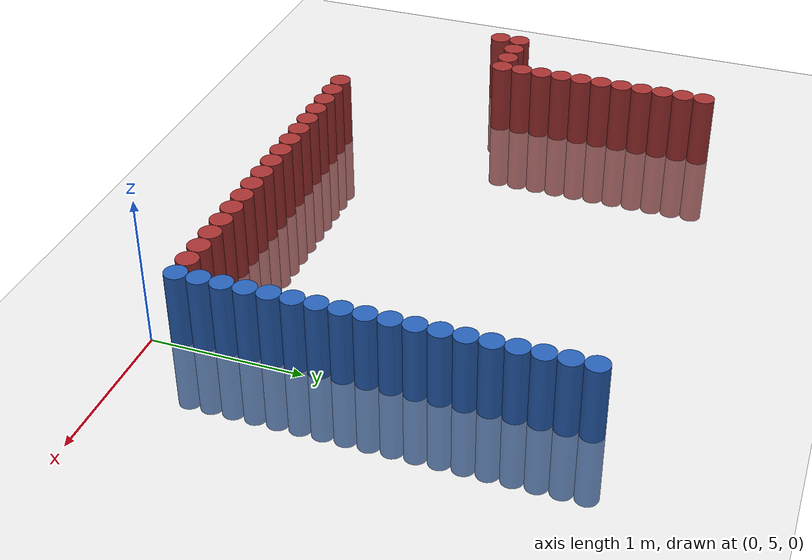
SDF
<sdf version="1.6">
 <world name="default">
  <model name="ground_plane">
   <static>1</static>
   <link name="link">
    <collision name="collision">
     <geometry><plane><normal>0 0 1</normal><size>100 100</size></plane></geometry>
     <surface><friction><ode><mu>100</mu><mu2>50</mu2></ode></friction></surface>
    </collision>
    <visual name="visual">
     <cast_shadows>0</cast_shadows>
     <geometry><plane><normal>0 0 1</normal><size>100 100</size></plane></geometry>
     <material>
      <script><uri>file://media/materials/scripts/gazebo.material</uri><name>Gazebo/Grey</name></script>
     </material>
    </visual>
   </link>
  </model>
  <model name="unit_cylinder_242">
   <static>1</static>
   <pose>-3.675000 6.075000 0.000000 0.000000 0.000000 0.000000</pose>
   <link name="link">
    <inertial>
     <mass>1</mass>
     <inertia><ixx>0.145833</ixx><ixy>0</ixy><ixz>0</ixz><iyy>0.145833</iyy><iyz>0</iyz><izz>0.125</izz></inertia>
    </inertial>
    <collision name="collision">
     <geometry><cylinder><radius>0.075000</radius><length>1</length></cylinder></geometry>
    </collision>
    <visual name="visual">
     <geometry><cylinder><radius>0.075000</radius><length>1</length></cylinder></geometry>
     <material>
      <ambient>0.648000 0.192000 0.192000 1</ambient>
      <diffuse>0.648000 0.192000 0.192000 1</diffuse>
     </material>
     <material>
      <script><name>Gazebo/Grey</name><uri>file://media/materials/scripts/gazebo.material</uri></script>
     </material>
    </visual>
   </link>
  </model>
  <model name="unit_cylinder_243">
   <static>1</static>
   <pose>-3.675000 6.225000 0.000000 0.000000 0.000000 0.000000</pose>
   <link name="link">
    <inertial>
     <mass>1</mass>
     <inertia><ixx>0.145833</ixx><ixy>0</ixy><ixz>0</ixz><iyy>0.145833</iyy><iyz>0</iyz><izz>0.125</izz></inertia>
    </inertial>
    <collision name="collision">
     <geometry><cylinder><radius>0.075000</radius><length>1</length></cylinder></geometry>
    </collision>
    <visual name="visual">
     <geometry><cylinder><radius>0.075000</radius><length>1</length></cylinder></geometry>
     <material>
      <ambient>0.648000 0.192000 0.192000 1</ambient>
      <diffuse>0.648000 0.192000 0.192000 1</diffuse>
     </material>
     <material>
      <script><name>Gazebo/Grey</name><uri>file://media/materials/scripts/gazebo.material</uri></script>
     </material>
    </visual>
   </link>
  </model>
  <model name="unit_cylinder_249">
   <static>1</static>
   <pose>-3.525000 6.225000 0.000000 0.000000 0.000000 0.000000</pose>
   <link name="link">
    <inertial>
     <mass>1</mass>
     <inertia><ixx>0.145833</ixx><ixy>0</ixy><ixz>0</ixz><iyy>0.145833</iyy><iyz>0</iyz><izz>0.125</izz></inertia>
    </inertial>
    <collision name="collision">
     <geometry><cylinder><radius>0.075000</radius><length>1</length></cylinder></geometry>
    </collision>
    <visual name="visual">
     <geometry><cylinder><radius>0.075000</radius><length>1</length></cylinder></geometry>
     <material>
      <ambient>0.648000 0.192000 0.192000 1</ambient>
      <diffuse>0.648000 0.192000 0.192000 1</diffuse>
     </material>
     <material>
      <script><name>Gazebo/Grey</name><uri>file://media/materials/scripts/gazebo.material</uri></script>
     </material>
    </visual>
   </link>
  </model>
  <model name="unit_cylinder_253">
   <static>1</static>
   <pose>-3.375000 6.225000 0.000000 0.000000 0.000000 0.000000</pose>
   <link name="link">
    <inertial>
     <mass>1</mass>
     <inertia><ixx>0.145833</ixx><ixy>0</ixy><ixz>0</ixz><iyy>0.145833</iyy><iyz>0</iyz><izz>0.125</izz></inertia>
    </inertial>
    <collision name="collision">
     <geometry><cylinder><radius>0.075000</radius><length>1</length></cylinder></geometry>
    </collision>
    <visual name="visual">
     <geometry><cylinder><radius>0.075000</radius><length>1</length></cylinder></geometry>
     <material>
      <ambient>0.648000 0.192000 0.192000 1</ambient>
      <diffuse>0.648000 0.192000 0.192000 1</diffuse>
     </material>
     <material>
      <script><name>Gazebo/Grey</name><uri>file://media/materials/scripts/gazebo.material</uri></script>
     </material>
    </visual>
   </link>
  </model>
  <model name="unit_cylinder_257">
   <static>1</static>
   <pose>-3.225000 6.225000 0.000000 0.000000 0.000000 0.000000</pose>
   <link name="link">
    <inertial>
     <mass>1</mass>
     <inertia><ixx>0.145833</ixx><ixy>0</ixy><ixz>0</ixz><iyy>0.145833</iyy><iyz>0</iyz><izz>0.125</izz></inertia>
    </inertial>
    <collision name="collision">
     <geometry><cylinder><radius>0.075000</radius><length>1</length></cylinder></geometry>
    </collision>
    <visual name="visual">
     <geometry><cylinder><radius>0.075000</radius><length>1</length></cylinder></geometry>
     <material>
      <ambient>0.648000 0.192000 0.192000 1</ambient>
      <diffuse>0.648000 0.192000 0.192000 1</diffuse>
     </material>
     <material>
      <script><name>Gazebo/Grey</name><uri>file://media/materials/scripts/gazebo.material</uri></script>
     </material>
    </visual>
   </link>
  </model>
  <model name="unit_cylinder_258">
   <static>1</static>
   <pose>-3.225000 6.375000 0.000000 0.000000 0.000000 0.000000</pose>
   <link name="link">
    <inertial>
     <mass>1</mass>
     <inertia><ixx>0.145833</ixx><ixy>0</ixy><ixz>0</ixz><iyy>0.145833</iyy><iyz>0</iyz><izz>0.125</izz></inertia>
    </inertial>
    <collision name="collision">
     <geometry><cylinder><radius>0.075000</radius><length>1</length></cylinder></geometry>
    </collision>
    <visual name="visual">
     <geometry><cylinder><radius>0.075000</radius><length>1</length></cylinder></geometry>
     <material>
      <ambient>0.648000 0.192000 0.192000 1</ambient>
      <diffuse>0.648000 0.192000 0.192000 1</diffuse>
     </material>
     <material>
      <script><name>Gazebo/Grey</name><uri>file://media/materials/scripts/gazebo.material</uri></script>
     </material>
    </visual>
   </link>
  </model>
  <model name="unit_cylinder_259">
   <static>1</static>
   <pose>-3.225000 6.525000 0.000000 0.000000 0.000000 0.000000</pose>
   <link name="link">
    <inertial>
     <mass>1</mass>
     <inertia><ixx>0.145833</ixx><ixy>0</ixy><ixz>0</ixz><iyy>0.145833</iyy><iyz>0</iyz><izz>0.125</izz></inertia>
    </inertial>
    <collision name="collision">
     <geometry><cylinder><radius>0.075000</radius><length>1</length></cylinder></geometry>
    </collision>
    <visual name="visual">
     <geometry><cylinder><radius>0.075000</radius><length>1</length></cylinder></geometry>
     <material>
      <ambient>0.648000 0.192000 0.192000 1</ambient>
      <diffuse>0.648000 0.192000 0.192000 1</diffuse>
     </material>
     <material>
      <script><name>Gazebo/Grey</name><uri>file://media/materials/scripts/gazebo.material</uri></script>
     </material>
    </visual>
   </link>
  </model>
  <model name="unit_cylinder_260">
   <static>1</static>
   <pose>-3.225000 6.675000 0.000000 0.000000 0.000000 0.000000</pose>
   <link name="link">
    <inertial>
     <mass>1</mass>
     <inertia><ixx>0.145833</ixx><ixy>0</ixy><ixz>0</ixz><iyy>0.145833</iyy><iyz>0</iyz><izz>0.125</izz></inertia>
    </inertial>
    <collision name="collision">
     <geometry><cylinder><radius>0.075000</radius><length>1</length></cylinder></geometry>
    </collision>
    <visual name="visual">
     <geometry><cylinder><radius>0.075000</radius><length>1</length></cylinder></geometry>
     <material>
      <ambient>0.648000 0.192000 0.192000 1</ambient>
      <diffuse>0.648000 0.192000 0.192000 1</diffuse>
     </material>
     <material>
      <script><name>Gazebo/Grey</name><uri>file://media/materials/scripts/gazebo.material</uri></script>
     </material>
    </visual>
   </link>
  </model>
  <model name="unit_cylinder_261">
   <static>1</static>
   <pose>-3.225000 6.825000 0.000000 0.000000 0.000000 0.000000</pose>
   <link name="link">
    <inertial>
     <mass>1</mass>
     <inertia><ixx>0.145833</ixx><ixy>0</ixy><ixz>0</ixz><iyy>0.145833</iyy><iyz>0</iyz><izz>0.125</izz></inertia>
    </inertial>
    <collision name="collision">
     <geometry><cylinder><radius>0.075000</radius><length>1</length></cylinder></geometry>
    </collision>
    <visual name="visual">
     <geometry><cylinder><radius>0.075000</radius><length>1</length></cylinder></geometry>
     <material>
      <ambient>0.648000 0.192000 0.192000 1</ambient>
      <diffuse>0.648000 0.192000 0.192000 1</diffuse>
     </material>
     <material>
      <script><name>Gazebo/Grey</name><uri>file://media/materials/scripts/gazebo.material</uri></script>
     </material>
    </visual>
   </link>
  </model>
  <model name="unit_cylinder_262">
   <static>1</static>
   <pose>-3.225000 6.975000 0.000000 0.000000 0.000000 0.000000</pose>
   <link name="link">
    <inertial>
     <mass>1</mass>
     <inertia><ixx>0.145833</ixx><ixy>0</ixy><ixz>0</ixz><iyy>0.145833</iyy><iyz>0</iyz><izz>0.125</izz></inertia>
    </inertial>
    <collision name="collision">
     <geometry><cylinder><radius>0.075000</radius><length>1</length></cylinder></geometry>
    </collision>
    <visual name="visual">
     <geometry><cylinder><radius>0.075000</radius><length>1</length></cylinder></geometry>
     <material>
      <ambient>0.648000 0.192000 0.192000 1</ambient>
      <diffuse>0.648000 0.192000 0.192000 1</diffuse>
     </material>
     <material>
      <script><name>Gazebo/Grey</name><uri>file://media/materials/scripts/gazebo.material</uri></script>
     </material>
    </visual>
   </link>
  </model>
  <model name="unit_cylinder_263">
   <static>1</static>
   <pose>-3.225000 7.125000 0.000000 0.000000 0.000000 0.000000</pose>
   <link name="link">
    <inertial>
     <mass>1</mass>
     <inertia><ixx>0.145833</ixx><ixy>0</ixy><ixz>0</ixz><iyy>0.145833</iyy><iyz>0</iyz><izz>0.125</izz></inertia>
    </inertial>
    <collision name="collision">
     <geometry><cylinder><radius>0.075000</radius><length>1</length></cylinder></geometry>
    </collision>
    <visual name="visual">
     <geometry><cylinder><radius>0.075000</radius><length>1</length></cylinder></geometry>
     <material>
      <ambient>0.648000 0.192000 0.192000 1</ambient>
      <diffuse>0.648000 0.192000 0.192000 1</diffuse>
     </material>
     <material>
      <script><name>Gazebo/Grey</name><uri>file://media/materials/scripts/gazebo.material</uri></script>
     </material>
    </visual>
   </link>
  </model>
  <model name="unit_cylinder_264">
   <static>1</static>
   <pose>-3.225000 7.275000 0.000000 0.000000 0.000000 0.000000</pose>
   <link name="link">
    <inertial>
     <mass>1</mass>
     <inertia><ixx>0.145833</ixx><ixy>0</ixy><ixz>0</ixz><iyy>0.145833</iyy><iyz>0</iyz><izz>0.125</izz></inertia>
    </inertial>
    <collision name="collision">
     <geometry><cylinder><radius>0.075000</radius><length>1</length></cylinder></geometry>
    </collision>
    <visual name="visual">
     <geometry><cylinder><radius>0.075000</radius><length>1</length></cylinder></geometry>
     <material>
      <ambient>0.648000 0.192000 0.192000 1</ambient>
      <diffuse>0.648000 0.192000 0.192000 1</diffuse>
     </material>
     <material>
      <script><name>Gazebo/Grey</name><uri>file://media/materials/scripts/gazebo.material</uri></script>
     </material>
    </visual>
   </link>
  </model>
  <model name="unit_cylinder_265">
   <static>1</static>
   <pose>-3.225000 7.425000 0.000000 0.000000 0.000000 0.000000</pose>
   <link name="link">
    <inertial>
     <mass>1</mass>
     <inertia><ixx>0.145833</ixx><ixy>0</ixy><ixz>0</ixz><iyy>0.145833</iyy><iyz>0</iyz><izz>0.125</izz></inertia>
    </inertial>
    <collision name="collision">
     <geometry><cylinder><radius>0.075000</radius><length>1</length></cylinder></geometry>
    </collision>
    <visual name="visual">
     <geometry><cylinder><radius>0.075000</radius><length>1</length></cylinder></geometry>
     <material>
      <ambient>0.648000 0.192000 0.192000 1</ambient>
      <diffuse>0.648000 0.192000 0.192000 1</diffuse>
     </material>
     <material>
      <script><name>Gazebo/Grey</name><uri>file://media/materials/scripts/gazebo.material</uri></script>
     </material>
    </visual>
   </link>
  </model>
  <model name="unit_cylinder_266">
   <static>1</static>
   <pose>-3.225000 7.575000 0.000000 0.000000 0.000000 0.000000</pose>
   <link name="link">
    <inertial>
     <mass>1</mass>
     <inertia><ixx>0.145833</ixx><ixy>0</ixy><ixz>0</ixz><iyy>0.145833</iyy><iyz>0</iyz><izz>0.125</izz></inertia>
    </inertial>
    <collision name="collision">
     <geometry><cylinder><radius>0.075000</radius><length>1</length></cylinder></geometry>
    </collision>
    <visual name="visual">
     <geometry><cylinder><radius>0.075000</radius><length>1</length></cylinder></geometry>
     <material>
      <ambient>0.648000 0.192000 0.192000 1</ambient>
      <diffuse>0.648000 0.192000 0.192000 1</diffuse>
     </material>
     <material>
      <script><name>Gazebo/Grey</name><uri>file://media/materials/scripts/gazebo.material</uri></script>
     </material>
    </visual>
   </link>
  </model>
  <model name="unit_cylinder_267">
   <static>1</static>
   <pose>-3.225000 7.725000 0.000000 0.000000 0.000000 0.000000</pose>
   <link name="link">
    <inertial>
     <mass>1</mass>
     <inertia><ixx>0.145833</ixx><ixy>0</ixy><ixz>0</ixz><iyy>0.145833</iyy><iyz>0</iyz><izz>0.125</izz></inertia>
    </inertial>
    <collision name="collision">
     <geometry><cylinder><radius>0.075000</radius><length>1</length></cylinder></geometry>
    </collision>
    <visual name="visual">
     <geometry><cylinder><radius>0.075000</radius><length>1</length></cylinder></geometry>
     <material>
      <ambient>0.648000 0.192000 0.192000 1</ambient>
      <diffuse>0.648000 0.192000 0.192000 1</diffuse>
     </material>
     <material>
      <script><name>Gazebo/Grey</name><uri>file://media/materials/scripts/gazebo.material</uri></script>
     </material>
    </visual>
   </link>
  </model>
  <model name="unit_cylinder_284">
   <static>1</static>
   <pose>-2.625000 5.175000 0.000000 0.000000 0.000000 0.000000</pose>
   <link name="link">
    <inertial>
     <mass>1</mass>
     <inertia><ixx>0.145833</ixx><ixy>0</ixy><ixz>0</ixz><iyy>0.145833</iyy><iyz>0</iyz><izz>0.125</izz></inertia>
    </inertial>
    <collision name="collision">
     <geometry><cylinder><radius>0.075000</radius><length>1</length></cylinder></geometry>
    </collision>
    <visual name="visual">
     <geometry><cylinder><radius>0.075000</radius><length>1</length></cylinder></geometry>
     <material>
      <ambient>0.648000 0.192000 0.192000 1</ambient>
      <diffuse>0.648000 0.192000 0.192000 1</diffuse>
     </material>
     <material>
      <script><name>Gazebo/Grey</name><uri>file://media/materials/scripts/gazebo.material</uri></script>
     </material>
    </visual>
   </link>
  </model>
  <model name="unit_cylinder_286">
   <static>1</static>
   <pose>-2.475000 5.175000 0.000000 0.000000 0.000000 0.000000</pose>
   <link name="link">
    <inertial>
     <mass>1</mass>
     <inertia><ixx>0.145833</ixx><ixy>0</ixy><ixz>0</ixz><iyy>0.145833</iyy><iyz>0</iyz><izz>0.125</izz></inertia>
    </inertial>
    <collision name="collision">
     <geometry><cylinder><radius>0.075000</radius><length>1</length></cylinder></geometry>
    </collision>
    <visual name="visual">
     <geometry><cylinder><radius>0.075000</radius><length>1</length></cylinder></geometry>
     <material>
      <ambient>0.648000 0.192000 0.192000 1</ambient>
      <diffuse>0.648000 0.192000 0.192000 1</diffuse>
     </material>
     <material>
      <script><name>Gazebo/Grey</name><uri>file://media/materials/scripts/gazebo.material</uri></script>
     </material>
    </visual>
   </link>
  </model>
  <model name="unit_cylinder_288">
   <static>1</static>
   <pose>-2.325000 5.175000 0.000000 0.000000 0.000000 0.000000</pose>
   <link name="link">
    <inertial>
     <mass>1</mass>
     <inertia><ixx>0.145833</ixx><ixy>0</ixy><ixz>0</ixz><iyy>0.145833</iyy><iyz>0</iyz><izz>0.125</izz></inertia>
    </inertial>
    <collision name="collision">
     <geometry><cylinder><radius>0.075000</radius><length>1</length></cylinder></geometry>
    </collision>
    <visual name="visual">
     <geometry><cylinder><radius>0.075000</radius><length>1</length></cylinder></geometry>
     <material>
      <ambient>0.648000 0.192000 0.192000 1</ambient>
      <diffuse>0.648000 0.192000 0.192000 1</diffuse>
     </material>
     <material>
      <script><name>Gazebo/Grey</name><uri>file://media/materials/scripts/gazebo.material</uri></script>
     </material>
    </visual>
   </link>
  </model>
  <model name="unit_cylinder_290">
   <static>1</static>
   <pose>-2.175000 5.175000 0.000000 0.000000 0.000000 0.000000</pose>
   <link name="link">
    <inertial>
     <mass>1</mass>
     <inertia><ixx>0.145833</ixx><ixy>0</ixy><ixz>0</ixz><iyy>0.145833</iyy><iyz>0</iyz><izz>0.125</izz></inertia>
    </inertial>
    <collision name="collision">
     <geometry><cylinder><radius>0.075000</radius><length>1</length></cylinder></geometry>
    </collision>
    <visual name="visual">
     <geometry><cylinder><radius>0.075000</radius><length>1</length></cylinder></geometry>
     <material>
      <ambient>0.648000 0.192000 0.192000 1</ambient>
      <diffuse>0.648000 0.192000 0.192000 1</diffuse>
     </material>
     <material>
      <script><name>Gazebo/Grey</name><uri>file://media/materials/scripts/gazebo.material</uri></script>
     </material>
    </visual>
   </link>
  </model>
  <model name="unit_cylinder_292">
   <static>1</static>
   <pose>-2.025000 5.175000 0.000000 0.000000 0.000000 0.000000</pose>
   <link name="link">
    <inertial>
     <mass>1</mass>
     <inertia><ixx>0.145833</ixx><ixy>0</ixy><ixz>0</ixz><iyy>0.145833</iyy><iyz>0</iyz><izz>0.125</izz></inertia>
    </inertial>
    <collision name="collision">
     <geometry><cylinder><radius>0.075000</radius><length>1</length></cylinder></geometry>
    </collision>
    <visual name="visual">
     <geometry><cylinder><radius>0.075000</radius><length>1</length></cylinder></geometry>
     <material>
      <ambient>0.648000 0.192000 0.192000 1</ambient>
      <diffuse>0.648000 0.192000 0.192000 1</diffuse>
     </material>
     <material>
      <script><name>Gazebo/Grey</name><uri>file://media/materials/scripts/gazebo.material</uri></script>
     </material>
    </visual>
   </link>
  </model>
  <model name="unit_cylinder_294">
   <static>1</static>
   <pose>-1.875000 5.175000 0.000000 0.000000 0.000000 0.000000</pose>
   <link name="link">
    <inertial>
     <mass>1</mass>
     <inertia><ixx>0.145833</ixx><ixy>0</ixy><ixz>0</ixz><iyy>0.145833</iyy><iyz>0</iyz><izz>0.125</izz></inertia>
    </inertial>
    <collision name="collision">
     <geometry><cylinder><radius>0.075000</radius><length>1</length></cylinder></geometry>
    </collision>
    <visual name="visual">
     <geometry><cylinder><radius>0.075000</radius><length>1</length></cylinder></geometry>
     <material>
      <ambient>0.648000 0.192000 0.192000 1</ambient>
      <diffuse>0.648000 0.192000 0.192000 1</diffuse>
     </material>
     <material>
      <script><name>Gazebo/Grey</name><uri>file://media/materials/scripts/gazebo.material</uri></script>
     </material>
    </visual>
   </link>
  </model>
  <model name="unit_cylinder_296">
   <static>1</static>
   <pose>-1.725000 5.175000 0.000000 0.000000 0.000000 0.000000</pose>
   <link name="link">
    <inertial>
     <mass>1</mass>
     <inertia><ixx>0.145833</ixx><ixy>0</ixy><ixz>0</ixz><iyy>0.145833</iyy><iyz>0</iyz><izz>0.125</izz></inertia>
    </inertial>
    <collision name="collision">
     <geometry><cylinder><radius>0.075000</radius><length>1</length></cylinder></geometry>
    </collision>
    <visual name="visual">
     <geometry><cylinder><radius>0.075000</radius><length>1</length></cylinder></geometry>
     <material>
      <ambient>0.648000 0.192000 0.192000 1</ambient>
      <diffuse>0.648000 0.192000 0.192000 1</diffuse>
     </material>
     <material>
      <script><name>Gazebo/Grey</name><uri>file://media/materials/scripts/gazebo.material</uri></script>
     </material>
    </visual>
   </link>
  </model>
  <model name="unit_cylinder_298">
   <static>1</static>
   <pose>-1.575000 5.175000 0.000000 0.000000 0.000000 0.000000</pose>
   <link name="link">
    <inertial>
     <mass>1</mass>
     <inertia><ixx>0.145833</ixx><ixy>0</ixy><ixz>0</ixz><iyy>0.145833</iyy><iyz>0</iyz><izz>0.125</izz></inertia>
    </inertial>
    <collision name="collision">
     <geometry><cylinder><radius>0.075000</radius><length>1</length></cylinder></geometry>
    </collision>
    <visual name="visual">
     <geometry><cylinder><radius>0.075000</radius><length>1</length></cylinder></geometry>
     <material>
      <ambient>0.648000 0.192000 0.192000 1</ambient>
      <diffuse>0.648000 0.192000 0.192000 1</diffuse>
     </material>
     <material>
      <script><name>Gazebo/Grey</name><uri>file://media/materials/scripts/gazebo.material</uri></script>
     </material>
    </visual>
   </link>
  </model>
  <model name="unit_cylinder_300">
   <static>1</static>
   <pose>-1.425000 5.175000 0.000000 0.000000 0.000000 0.000000</pose>
   <link name="link">
    <inertial>
     <mass>1</mass>
     <inertia><ixx>0.145833</ixx><ixy>0</ixy><ixz>0</ixz><iyy>0.145833</iyy><iyz>0</iyz><izz>0.125</izz></inertia>
    </inertial>
    <collision name="collision">
     <geometry><cylinder><radius>0.075000</radius><length>1</length></cylinder></geometry>
    </collision>
    <visual name="visual">
     <geometry><cylinder><radius>0.075000</radius><length>1</length></cylinder></geometry>
     <material>
      <ambient>0.648000 0.192000 0.192000 1</ambient>
      <diffuse>0.648000 0.192000 0.192000 1</diffuse>
     </material>
     <material>
      <script><name>Gazebo/Grey</name><uri>file://media/materials/scripts/gazebo.material</uri></script>
     </material>
    </visual>
   </link>
  </model>
  <model name="unit_cylinder_302">
   <static>1</static>
   <pose>-1.275000 5.175000 0.000000 0.000000 0.000000 0.000000</pose>
   <link name="link">
    <inertial>
     <mass>1</mass>
     <inertia><ixx>0.145833</ixx><ixy>0</ixy><ixz>0</ixz><iyy>0.145833</iyy><iyz>0</iyz><izz>0.125</izz></inertia>
    </inertial>
    <collision name="collision">
     <geometry><cylinder><radius>0.075000</radius><length>1</length></cylinder></geometry>
    </collision>
    <visual name="visual">
     <geometry><cylinder><radius>0.075000</radius><length>1</length></cylinder></geometry>
     <material>
      <ambient>0.648000 0.192000 0.192000 1</ambient>
      <diffuse>0.648000 0.192000 0.192000 1</diffuse>
     </material>
     <material>
      <script><name>Gazebo/Grey</name><uri>file://media/materials/scripts/gazebo.material</uri></script>
     </material>
    </visual>
   </link>
  </model>
  <model name="unit_cylinder_304">
   <static>1</static>
   <pose>-1.125000 5.175000 0.000000 0.000000 0.000000 0.000000</pose>
   <link name="link">
    <inertial>
     <mass>1</mass>
     <inertia><ixx>0.145833</ixx><ixy>0</ixy><ixz>0</ixz><iyy>0.145833</iyy><iyz>0</iyz><izz>0.125</izz></inertia>
    </inertial>
    <collision name="collision">
     <geometry><cylinder><radius>0.075000</radius><length>1</length></cylinder></geometry>
    </collision>
    <visual name="visual">
     <geometry><cylinder><radius>0.075000</radius><length>1</length></cylinder></geometry>
     <material>
      <ambient>0.648000 0.192000 0.192000 1</ambient>
      <diffuse>0.648000 0.192000 0.192000 1</diffuse>
     </material>
     <material>
      <script><name>Gazebo/Grey</name><uri>file://media/materials/scripts/gazebo.material</uri></script>
     </material>
    </visual>
   </link>
  </model>
  <model name="unit_cylinder_306">
   <static>1</static>
   <pose>-0.975000 5.175000 0.000000 0.000000 0.000000 0.000000</pose>
   <link name="link">
    <inertial>
     <mass>1</mass>
     <inertia><ixx>0.145833</ixx><ixy>0</ixy><ixz>0</ixz><iyy>0.145833</iyy><iyz>0</iyz><izz>0.125</izz></inertia>
    </inertial>
    <collision name="collision">
     <geometry><cylinder><radius>0.075000</radius><length>1</length></cylinder></geometry>
    </collision>
    <visual name="visual">
     <geometry><cylinder><radius>0.075000</radius><length>1</length></cylinder></geometry>
     <material>
      <ambient>0.648000 0.192000 0.192000 1</ambient>
      <diffuse>0.648000 0.192000 0.192000 1</diffuse>
     </material>
     <material>
      <script><name>Gazebo/Grey</name><uri>file://media/materials/scripts/gazebo.material</uri></script>
     </material>
    </visual>
   </link>
  </model>
  <model name="unit_cylinder_308">
   <static>1</static>
   <pose>-0.825000 5.175000 0.000000 0.000000 0.000000 0.000000</pose>
   <link name="link">
    <inertial>
     <mass>1</mass>
     <inertia><ixx>0.145833</ixx><ixy>0</ixy><ixz>0</ixz><iyy>0.145833</iyy><iyz>0</iyz><izz>0.125</izz></inertia>
    </inertial>
    <collision name="collision">
     <geometry><cylinder><radius>0.075000</radius><length>1</length></cylinder></geometry>
    </collision>
    <visual name="visual">
     <geometry><cylinder><radius>0.075000</radius><length>1</length></cylinder></geometry>
     <material>
      <ambient>0.648000 0.192000 0.192000 1</ambient>
      <diffuse>0.648000 0.192000 0.192000 1</diffuse>
     </material>
     <material>
      <script><name>Gazebo/Grey</name><uri>file://media/materials/scripts/gazebo.material</uri></script>
     </material>
    </visual>
   </link>
  </model>
  <model name="unit_cylinder_310">
   <static>1</static>
   <pose>-0.675000 5.175000 0.000000 0.000000 0.000000 0.000000</pose>
   <link name="link">
    <inertial>
     <mass>1</mass>
     <inertia><ixx>0.145833</ixx><ixy>0</ixy><ixz>0</ixz><iyy>0.145833</iyy><iyz>0</iyz><izz>0.125</izz></inertia>
    </inertial>
    <collision name="collision">
     <geometry><cylinder><radius>0.075000</radius><length>1</length></cylinder></geometry>
    </collision>
    <visual name="visual">
     <geometry><cylinder><radius>0.075000</radius><length>1</length></cylinder></geometry>
     <material>
      <ambient>0.648000 0.192000 0.192000 1</ambient>
      <diffuse>0.648000 0.192000 0.192000 1</diffuse>
     </material>
     <material>
      <script><name>Gazebo/Grey</name><uri>file://media/materials/scripts/gazebo.material</uri></script>
     </material>
    </visual>
   </link>
  </model>
  <model name="unit_cylinder_312">
   <static>1</static>
   <pose>-0.525000 5.175000 0.000000 0.000000 0.000000 0.000000</pose>
   <link name="link">
    <inertial>
     <mass>1</mass>
     <inertia><ixx>0.145833</ixx><ixy>0</ixy><ixz>0</ixz><iyy>0.145833</iyy><iyz>0</iyz><izz>0.125</izz></inertia>
    </inertial>
    <collision name="collision">
     <geometry><cylinder><radius>0.075000</radius><length>1</length></cylinder></geometry>
    </collision>
    <visual name="visual">
     <geometry><cylinder><radius>0.075000</radius><length>1</length></cylinder></geometry>
     <material>
      <ambient>0.648000 0.192000 0.192000 1</ambient>
      <diffuse>0.648000 0.192000 0.192000 1</diffuse>
     </material>
     <material>
      <script><name>Gazebo/Grey</name><uri>file://media/materials/scripts/gazebo.material</uri></script>
     </material>
    </visual>
   </link>
  </model>
  <model name="unit_cylinder_314">
   <static>1</static>
   <pose>-0.375000 5.175000 0.000000 0.000000 0.000000 0.000000</pose>
   <link name="link">
    <inertial>
     <mass>1</mass>
     <inertia><ixx>0.145833</ixx><ixy>0</ixy><ixz>0</ixz><iyy>0.145833</iyy><iyz>0</iyz><izz>0.125</izz></inertia>
    </inertial>
    <collision name="collision">
     <geometry><cylinder><radius>0.075000</radius><length>1</length></cylinder></geometry>
    </collision>
    <visual name="visual">
     <geometry><cylinder><radius>0.075000</radius><length>1</length></cylinder></geometry>
     <material>
      <ambient>0.648000 0.192000 0.192000 1</ambient>
      <diffuse>0.648000 0.192000 0.192000 1</diffuse>
     </material>
     <material>
      <script><name>Gazebo/Grey</name><uri>file://media/materials/scripts/gazebo.material</uri></script>
     </material>
    </visual>
   </link>
  </model>
  <model name="unit_cylinder_316">
   <static>1</static>
   <pose>-0.225000 5.175000 0.000000 0.000000 0.000000 0.000000</pose>
   <link name="link">
    <inertial>
     <mass>1</mass>
     <inertia><ixx>0.145833</ixx><ixy>0</ixy><ixz>0</ixz><iyy>0.145833</iyy><iyz>0</iyz><izz>0.125</izz></inertia>
    </inertial>
    <collision name="collision">
     <geometry><cylinder><radius>0.075000</radius><length>1</length></cylinder></geometry>
    </collision>
    <visual name="visual">
     <geometry><cylinder><radius>0.075000</radius><length>1</length></cylinder></geometry>
     <material>
      <ambient>0.648000 0.192000 0.192000 1</ambient>
      <diffuse>0.648000 0.192000 0.192000 1</diffuse>
     </material>
     <material>
      <script><name>Gazebo/Grey</name><uri>file://media/materials/scripts/gazebo.material</uri></script>
     </material>
    </visual>
   </link>
  </model>
  <model name="unit_cylinder_318">
   <static>1</static>
   <pose>-0.075000 5.175000 0.000000 0.000000 0.000000 0.000000</pose>
   <link name="link">
    <inertial>
     <mass>1</mass>
     <inertia><ixx>0.145833</ixx><ixy>0</ixy><ixz>0</ixz><iyy>0.145833</iyy><iyz>0</iyz><izz>0.125</izz></inertia>
    </inertial>
    <collision name="collision">
     <geometry><cylinder><radius>0.075000</radius><length>1</length></cylinder></geometry>
    </collision>
    <visual name="visual">
     <geometry><cylinder><radius>0.075000</radius><length>1</length></cylinder></geometry>
     <material>
      <ambient>0.152000 0.379000 0.720000 1</ambient>
      <diffuse>0.152000 0.379000 0.720000 1</diffuse>
     </material>
     <material>
      <script><name>Gazebo/Grey</name><uri>file://media/materials/scripts/gazebo.material</uri></script>
     </material>
    </visual>
   </link>
  </model>
  <model name="unit_cylinder_319">
   <static>1</static>
   <pose>-0.075000 5.325000 0.000000 0.000000 0.000000 0.000000</pose>
   <link name="link">
    <inertial>
     <mass>1</mass>
     <inertia><ixx>0.145833</ixx><ixy>0</ixy><ixz>0</ixz><iyy>0.145833</iyy><iyz>0</iyz><izz>0.125</izz></inertia>
    </inertial>
    <collision name="collision">
     <geometry><cylinder><radius>0.075000</radius><length>1</length></cylinder></geometry>
    </collision>
    <visual name="visual">
     <geometry><cylinder><radius>0.075000</radius><length>1</length></cylinder></geometry>
     <material>
      <ambient>0.152000 0.379000 0.720000 1</ambient>
      <diffuse>0.152000 0.379000 0.720000 1</diffuse>
     </material>
     <material>
      <script><name>Gazebo/Grey</name><uri>file://media/materials/scripts/gazebo.material</uri></script>
     </material>
    </visual>
   </link>
  </model>
  <model name="unit_cylinder_320">
   <static>1</static>
   <pose>-0.075000 5.475000 0.000000 0.000000 0.000000 0.000000</pose>
   <link name="link">
    <inertial>
     <mass>1</mass>
     <inertia><ixx>0.145833</ixx><ixy>0</ixy><ixz>0</ixz><iyy>0.145833</iyy><iyz>0</iyz><izz>0.125</izz></inertia>
    </inertial>
    <collision name="collision">
     <geometry><cylinder><radius>0.075000</radius><length>1</length></cylinder></geometry>
    </collision>
    <visual name="visual">
     <geometry><cylinder><radius>0.075000</radius><length>1</length></cylinder></geometry>
     <material>
      <ambient>0.152000 0.379000 0.720000 1</ambient>
      <diffuse>0.152000 0.379000 0.720000 1</diffuse>
     </material>
     <material>
      <script><name>Gazebo/Grey</name><uri>file://media/materials/scripts/gazebo.material</uri></script>
     </material>
    </visual>
   </link>
  </model>
  <model name="unit_cylinder_321">
   <static>1</static>
   <pose>-0.075000 5.625000 0.000000 0.000000 0.000000 0.000000</pose>
   <link name="link">
    <inertial>
     <mass>1</mass>
     <inertia><ixx>0.145833</ixx><ixy>0</ixy><ixz>0</ixz><iyy>0.145833</iyy><iyz>0</iyz><izz>0.125</izz></inertia>
    </inertial>
    <collision name="collision">
     <geometry><cylinder><radius>0.075000</radius><length>1</length></cylinder></geometry>
    </collision>
    <visual name="visual">
     <geometry><cylinder><radius>0.075000</radius><length>1</length></cylinder></geometry>
     <material>
      <ambient>0.152000 0.379000 0.720000 1</ambient>
      <diffuse>0.152000 0.379000 0.720000 1</diffuse>
     </material>
     <material>
      <script><name>Gazebo/Grey</name><uri>file://media/materials/scripts/gazebo.material</uri></script>
     </material>
    </visual>
   </link>
  </model>
  <model name="unit_cylinder_322">
   <static>1</static>
   <pose>-0.075000 5.775000 0.000000 0.000000 0.000000 0.000000</pose>
   <link name="link">
    <inertial>
     <mass>1</mass>
     <inertia><ixx>0.145833</ixx><ixy>0</ixy><ixz>0</ixz><iyy>0.145833</iyy><iyz>0</iyz><izz>0.125</izz></inertia>
    </inertial>
    <collision name="collision">
     <geometry><cylinder><radius>0.075000</radius><length>1</length></cylinder></geometry>
    </collision>
    <visual name="visual">
     <geometry><cylinder><radius>0.075000</radius><length>1</length></cylinder></geometry>
     <material>
      <ambient>0.152000 0.379000 0.720000 1</ambient>
      <diffuse>0.152000 0.379000 0.720000 1</diffuse>
     </material>
     <material>
      <script><name>Gazebo/Grey</name><uri>file://media/materials/scripts/gazebo.material</uri></script>
     </material>
    </visual>
   </link>
  </model>
  <model name="unit_cylinder_323">
   <static>1</static>
   <pose>-0.075000 5.925000 0.000000 0.000000 0.000000 0.000000</pose>
   <link name="link">
    <inertial>
     <mass>1</mass>
     <inertia><ixx>0.145833</ixx><ixy>0</ixy><ixz>0</ixz><iyy>0.145833</iyy><iyz>0</iyz><izz>0.125</izz></inertia>
    </inertial>
    <collision name="collision">
     <geometry><cylinder><radius>0.075000</radius><length>1</length></cylinder></geometry>
    </collision>
    <visual name="visual">
     <geometry><cylinder><radius>0.075000</radius><length>1</length></cylinder></geometry>
     <material>
      <ambient>0.152000 0.379000 0.720000 1</ambient>
      <diffuse>0.152000 0.379000 0.720000 1</diffuse>
     </material>
     <material>
      <script><name>Gazebo/Grey</name><uri>file://media/materials/scripts/gazebo.material</uri></script>
     </material>
    </visual>
   </link>
  </model>
  <model name="unit_cylinder_324">
   <static>1</static>
   <pose>-0.075000 6.075000 0.000000 0.000000 0.000000 0.000000</pose>
   <link name="link">
    <inertial>
     <mass>1</mass>
     <inertia><ixx>0.145833</ixx><ixy>0</ixy><ixz>0</ixz><iyy>0.145833</iyy><iyz>0</iyz><izz>0.125</izz></inertia>
    </inertial>
    <collision name="collision">
     <geometry><cylinder><radius>0.075000</radius><length>1</length></cylinder></geometry>
    </collision>
    <visual name="visual">
     <geometry><cylinder><radius>0.075000</radius><length>1</length></cylinder></geometry>
     <material>
      <ambient>0.152000 0.379000 0.720000 1</ambient>
      <diffuse>0.152000 0.379000 0.720000 1</diffuse>
     </material>
     <material>
      <script><name>Gazebo/Grey</name><uri>file://media/materials/scripts/gazebo.material</uri></script>
     </material>
    </visual>
   </link>
  </model>
  <model name="unit_cylinder_325">
   <static>1</static>
   <pose>-0.075000 6.225000 0.000000 0.000000 0.000000 0.000000</pose>
   <link name="link">
    <inertial>
     <mass>1</mass>
     <inertia><ixx>0.145833</ixx><ixy>0</ixy><ixz>0</ixz><iyy>0.145833</iyy><iyz>0</iyz><izz>0.125</izz></inertia>
    </inertial>
    <collision name="collision">
     <geometry><cylinder><radius>0.075000</radius><length>1</length></cylinder></geometry>
    </collision>
    <visual name="visual">
     <geometry><cylinder><radius>0.075000</radius><length>1</length></cylinder></geometry>
     <material>
      <ambient>0.152000 0.379000 0.720000 1</ambient>
      <diffuse>0.152000 0.379000 0.720000 1</diffuse>
     </material>
     <material>
      <script><name>Gazebo/Grey</name><uri>file://media/materials/scripts/gazebo.material</uri></script>
     </material>
    </visual>
   </link>
  </model>
  <model name="unit_cylinder_326">
   <static>1</static>
   <pose>-0.075000 6.375000 0.000000 0.000000 0.000000 0.000000</pose>
   <link name="link">
    <inertial>
     <mass>1</mass>
     <inertia><ixx>0.145833</ixx><ixy>0</ixy><ixz>0</ixz><iyy>0.145833</iyy><iyz>0</iyz><izz>0.125</izz></inertia>
    </inertial>
    <collision name="collision">
     <geometry><cylinder><radius>0.075000</radius><length>1</length></cylinder></geometry>
    </collision>
    <visual name="visual">
     <geometry><cylinder><radius>0.075000</radius><length>1</length></cylinder></geometry>
     <material>
      <ambient>0.152000 0.379000 0.720000 1</ambient>
      <diffuse>0.152000 0.379000 0.720000 1</diffuse>
     </material>
     <material>
      <script><name>Gazebo/Grey</name><uri>file://media/materials/scripts/gazebo.material</uri></script>
     </material>
    </visual>
   </link>
  </model>
  <model name="unit_cylinder_327">
   <static>1</static>
   <pose>-0.075000 6.525000 0.000000 0.000000 0.000000 0.000000</pose>
   <link name="link">
    <inertial>
     <mass>1</mass>
     <inertia><ixx>0.145833</ixx><ixy>0</ixy><ixz>0</ixz><iyy>0.145833</iyy><iyz>0</iyz><izz>0.125</izz></inertia>
    </inertial>
    <collision name="collision">
     <geometry><cylinder><radius>0.075000</radius><length>1</length></cylinder></geometry>
    </collision>
    <visual name="visual">
     <geometry><cylinder><radius>0.075000</radius><length>1</length></cylinder></geometry>
     <material>
      <ambient>0.152000 0.379000 0.720000 1</ambient>
      <diffuse>0.152000 0.379000 0.720000 1</diffuse>
     </material>
     <material>
      <script><name>Gazebo/Grey</name><uri>file://media/materials/scripts/gazebo.material</uri></script>
     </material>
    </visual>
   </link>
  </model>
  <model name="unit_cylinder_328">
   <static>1</static>
   <pose>-0.075000 6.675000 0.000000 0.000000 0.000000 0.000000</pose>
   <link name="link">
    <inertial>
     <mass>1</mass>
     <inertia><ixx>0.145833</ixx><ixy>0</ixy><ixz>0</ixz><iyy>0.145833</iyy><iyz>0</iyz><izz>0.125</izz></inertia>
    </inertial>
    <collision name="collision">
     <geometry><cylinder><radius>0.075000</radius><length>1</length></cylinder></geometry>
    </collision>
    <visual name="visual">
     <geometry><cylinder><radius>0.075000</radius><length>1</length></cylinder></geometry>
     <material>
      <ambient>0.152000 0.379000 0.720000 1</ambient>
      <diffuse>0.152000 0.379000 0.720000 1</diffuse>
     </material>
     <material>
      <script><name>Gazebo/Grey</name><uri>file://media/materials/scripts/gazebo.material</uri></script>
     </material>
    </visual>
   </link>
  </model>
  <model name="unit_cylinder_329">
   <static>1</static>
   <pose>-0.075000 6.825000 0.000000 0.000000 0.000000 0.000000</pose>
   <link name="link">
    <inertial>
     <mass>1</mass>
     <inertia><ixx>0.145833</ixx><ixy>0</ixy><ixz>0</ixz><iyy>0.145833</iyy><iyz>0</iyz><izz>0.125</izz></inertia>
    </inertial>
    <collision name="collision">
     <geometry><cylinder><radius>0.075000</radius><length>1</length></cylinder></geometry>
    </collision>
    <visual name="visual">
     <geometry><cylinder><radius>0.075000</radius><length>1</length></cylinder></geometry>
     <material>
      <ambient>0.152000 0.379000 0.720000 1</ambient>
      <diffuse>0.152000 0.379000 0.720000 1</diffuse>
     </material>
     <material>
      <script><name>Gazebo/Grey</name><uri>file://media/materials/scripts/gazebo.material</uri></script>
     </material>
    </visual>
   </link>
  </model>
  <model name="unit_cylinder_330">
   <static>1</static>
   <pose>-0.075000 6.975000 0.000000 0.000000 0.000000 0.000000</pose>
   <link name="link">
    <inertial>
     <mass>1</mass>
     <inertia><ixx>0.145833</ixx><ixy>0</ixy><ixz>0</ixz><iyy>0.145833</iyy><iyz>0</iyz><izz>0.125</izz></inertia>
    </inertial>
    <collision name="collision">
     <geometry><cylinder><radius>0.075000</radius><length>1</length></cylinder></geometry>
    </collision>
    <visual name="visual">
     <geometry><cylinder><radius>0.075000</radius><length>1</length></cylinder></geometry>
     <material>
      <ambient>0.152000 0.379000 0.720000 1</ambient>
      <diffuse>0.152000 0.379000 0.720000 1</diffuse>
     </material>
     <material>
      <script><name>Gazebo/Grey</name><uri>file://media/materials/scripts/gazebo.material</uri></script>
     </material>
    </visual>
   </link>
  </model>
  <model name="unit_cylinder_331">
   <static>1</static>
   <pose>-0.075000 7.125000 0.000000 0.000000 0.000000 0.000000</pose>
   <link name="link">
    <inertial>
     <mass>1</mass>
     <inertia><ixx>0.145833</ixx><ixy>0</ixy><ixz>0</ixz><iyy>0.145833</iyy><iyz>0</iyz><izz>0.125</izz></inertia>
    </inertial>
    <collision name="collision">
     <geometry><cylinder><radius>0.075000</radius><length>1</length></cylinder></geometry>
    </collision>
    <visual name="visual">
     <geometry><cylinder><radius>0.075000</radius><length>1</length></cylinder></geometry>
     <material>
      <ambient>0.152000 0.379000 0.720000 1</ambient>
      <diffuse>0.152000 0.379000 0.720000 1</diffuse>
     </material>
     <material>
      <script><name>Gazebo/Grey</name><uri>file://media/materials/scripts/gazebo.material</uri></script>
     </material>
    </visual>
   </link>
  </model>
  <model name="unit_cylinder_332">
   <static>1</static>
   <pose>-0.075000 7.275000 0.000000 0.000000 0.000000 0.000000</pose>
   <link name="link">
    <inertial>
     <mass>1</mass>
     <inertia><ixx>0.145833</ixx><ixy>0</ixy><ixz>0</ixz><iyy>0.145833</iyy><iyz>0</iyz><izz>0.125</izz></inertia>
    </inertial>
    <collision name="collision">
     <geometry><cylinder><radius>0.075000</radius><length>1</length></cylinder></geometry>
    </collision>
    <visual name="visual">
     <geometry><cylinder><radius>0.075000</radius><length>1</length></cylinder></geometry>
     <material>
      <ambient>0.152000 0.379000 0.720000 1</ambient>
      <diffuse>0.152000 0.379000 0.720000 1</diffuse>
     </material>
     <material>
      <script><name>Gazebo/Grey</name><uri>file://media/materials/scripts/gazebo.material</uri></script>
     </material>
    </visual>
   </link>
  </model>
  <model name="unit_cylinder_333">
   <static>1</static>
   <pose>-0.075000 7.425000 0.000000 0.000000 0.000000 0.000000</pose>
   <link name="link">
    <inertial>
     <mass>1</mass>
     <inertia><ixx>0.145833</ixx><ixy>0</ixy><ixz>0</ixz><iyy>0.145833</iyy><iyz>0</iyz><izz>0.125</izz></inertia>
    </inertial>
    <collision name="collision">
     <geometry><cylinder><radius>0.075000</radius><length>1</length></cylinder></geometry>
    </collision>
    <visual name="visual">
     <geometry><cylinder><radius>0.075000</radius><length>1</length></cylinder></geometry>
     <material>
      <ambient>0.152000 0.379000 0.720000 1</ambient>
      <diffuse>0.152000 0.379000 0.720000 1</diffuse>
     </material>
     <material>
      <script><name>Gazebo/Grey</name><uri>file://media/materials/scripts/gazebo.material</uri></script>
     </material>
    </visual>
   </link>
  </model>
  <model name="unit_cylinder_334">
   <static>1</static>
   <pose>-0.075000 7.575000 0.000000 0.000000 0.000000 0.000000</pose>
   <link name="link">
    <inertial>
     <mass>1</mass>
     <inertia><ixx>0.145833</ixx><ixy>0</ixy><ixz>0</ixz><iyy>0.145833</iyy><iyz>0</iyz><izz>0.125</izz></inertia>
    </inertial>
    <collision name="collision">
     <geometry><cylinder><radius>0.075000</radius><length>1</length></cylinder></geometry>
    </collision>
    <visual name="visual">
     <geometry><cylinder><radius>0.075000</radius><length>1</length></cylinder></geometry>
     <material>
      <ambient>0.152000 0.379000 0.720000 1</ambient>
      <diffuse>0.152000 0.379000 0.720000 1</diffuse>
     </material>
     <material>
      <script><name>Gazebo/Grey</name><uri>file://media/materials/scripts/gazebo.material</uri></script>
     </material>
    </visual>
   </link>
  </model>
  <model name="unit_cylinder_335">
   <static>1</static>
   <pose>-0.075000 7.725000 0.000000 0.000000 0.000000 0.000000</pose>
   <link name="link">
    <inertial>
     <mass>1</mass>
     <inertia><ixx>0.145833</ixx><ixy>0</ixy><ixz>0</ixz><iyy>0.145833</iyy><iyz>0</iyz><izz>0.125</izz></inertia>
    </inertial>
    <collision name="collision">
     <geometry><cylinder><radius>0.075000</radius><length>1</length></cylinder></geometry>
    </collision>
    <visual name="visual">
     <geometry><cylinder><radius>0.075000</radius><length>1</length></cylinder></geometry>
     <material>
      <ambient>0.152000 0.379000 0.720000 1</ambient>
      <diffuse>0.152000 0.379000 0.720000 1</diffuse>
     </material>
     <material>
      <script><name>Gazebo/Grey</name><uri>file://media/materials/scripts/gazebo.material</uri></script>
     </material>
    </visual>
   </link>
  </model>
 </world>
</sdf>
